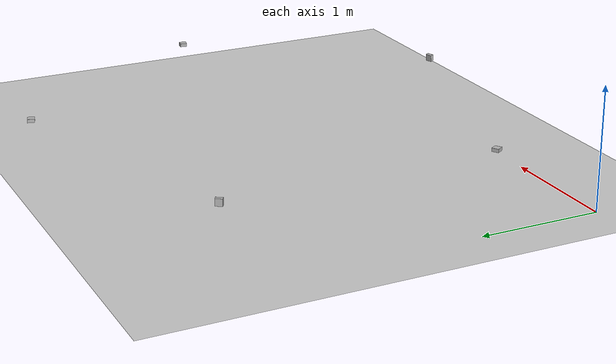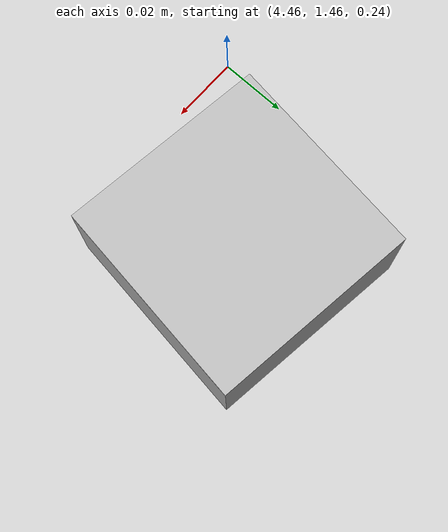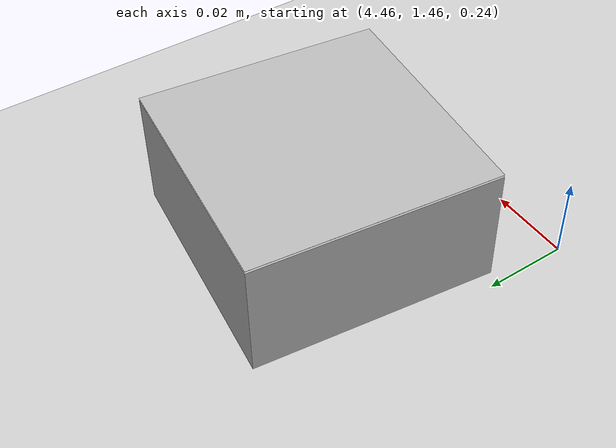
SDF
<sdf version='1.10'>
  <world name='empty'>
    <physics name='1ms' type='ignored'>
      <max_step_size>0.001</max_step_size>
      <real_time_factor>1</real_time_factor>
      <real_time_update_rate>1000</real_time_update_rate>
    </physics>

    <plugin name='gz::sim::systems::Physics' filename='gz-sim-physics-system'/>
    <plugin name='gz::sim::systems::UserCommands' filename='gz-sim-user-commands-system'/>
    <plugin name='gz::sim::systems::SceneBroadcaster' filename='gz-sim-scene-broadcaster-system'/>
    <plugin name='gz::sim::systems::Contact' filename='gz-sim-contact-system'/>

    <plugin name='gz::sim::systems::Sensors' filename='gz-sim-sensors-system'/>
    <plugin name='gz::sim::systems::Imu' filename='gz-sim-imu-system'/>
    <plugin filename="gz-sim-navsat-system" name="gz::sim::systems::NavSat"></plugin>

    <gravity>0 0 -9.8000000000000007</gravity>
    <magnetic_field>5.5644999999999998e-06 2.2875799999999999e-05 -4.2388400000000002e-05</magnetic_field>
    <atmosphere type='adiabatic'/>
    <scene>
      <ambient>0.400000006 0.400000006 0.400000006 1</ambient>
      <background>0.699999988 0.699999988 0.699999988 1</background>
      <shadows>true</shadows>
    </scene>
    <model name='ground_plane'>
      <static>true</static>
      <link name='link'>
        <collision name='collision'>
          <geometry>
            <plane>
              <normal>0 0 1</normal>
              <size>100 100</size>
            </plane>
          </geometry>
          <surface>
            <friction>
              <ode/>
            </friction>
            <bounce/>
            <contact/>
          </surface>
        </collision>
        <visual name='visual'>
          <geometry>
            <plane>
              <normal>0 0 1</normal>
              <size>100 100</size>
            </plane>
          </geometry>
          <material>
            <ambient>0.800000012 0.800000012 0.800000012 1</ambient>
            <diffuse>0.800000012 0.800000012 0.800000012 1</diffuse>
            <specular>0.800000012 0.800000012 0.800000012 1</specular>
          </material>
        </visual>
        <pose>0 0 0 0 0 0</pose>
        <inertial>
          <pose>0 0 0 0 0 0</pose>
          <mass>1</mass>
          <inertia>
            <ixx>1</ixx>
            <ixy>0</ixy>
            <ixz>0</ixz>
            <iyy>1</iyy>
            <iyz>0</iyz>
            <izz>1</izz>
          </inertia>
        </inertial>
        <enable_wind>false</enable_wind>
      </link>
      <pose>0 0 0 0 0 0</pose>
      <self_collide>false</self_collide>
    </model>

    <include>
      <uri>file:///home/ubuntu/gazebo_models/aruco_box</uri>
      <name>aruco_box_1</name>
      <pose>4.5 1.5 0.25 0 0 -1.696280217026461</pose>
    </include>
    <include>
      <uri>file:///home/ubuntu/gazebo_models/aruco_box</uri>
      <name>aruco_box_2</name>
      <pose>3.1200000000000001 3.3999999999999999 0.25 0 0 -1.8800000000000008</pose>
    </include>
    <include>
      <uri>file:///home/ubuntu/gazebo_models/aruco_box</uri>
      <name>aruco_box_3</name>
      <pose>0.87999999523162864 2.6800000667572021 0.24999999999999997 -3.1415551387824716 1.5645702263002295 2.5216248482743424</pose>
    </include>
    <include>
      <uri>file:///home/ubuntu/gazebo_models/aruco_box</uri>
      <name>aruco_box_4</name>
      <pose>0.87999999523162842 0.31999999284744263 0.25 0 0 -1.0120312326779595</pose>
    </include>
    <include>
      <uri>file:///home/ubuntu/gazebo_models/aruco_box</uri>
      <name>aruco_box_5</name>
      <pose>3.1199998855590816 -0.40000000596046459 0.24999999999999978 9.4332079693355041e-08 -1.478659009684971 1.8799999285045321</pose>
    </include>
    <light name='sun' type='directional'>
      <pose>0 0 10 0 0 0</pose>
      <cast_shadows>true</cast_shadows>
      <intensity>1</intensity>
      <direction>-0.5 0.10000000000000001 -0.90000000000000002</direction>
      <diffuse>0.800000012 0.800000012 0.800000012 1</diffuse>
      <specular>0.200000003 0.200000003 0.200000003 1</specular>
      <attenuation>
        <range>10</range>
        <linear>1</linear>
        <constant>1</constant>
        <quadratic>0</quadratic>
      </attenuation>
      <spot>
        <inner_angle>0</inner_angle>
        <outer_angle>0</outer_angle>
        <falloff>0</falloff>
      </spot>
    </light>
  </world>
</sdf>

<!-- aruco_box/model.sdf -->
<sdf version="1.6">
  <model name="aruco_box">
    <static>false</static>

    <link name="link">
      <inertial>
        <mass>0.05</mass>
        <inertia>
          <ixx>1e-5</ixx><iyy>1e-5</iyy><izz>1e-5</izz>
          <ixy>0</ixy><ixz>0</ixz><iyz>0</iyz>
        </inertia>
      </inertial>

      <collision name="box_col">
        <geometry>
          <box><size>0.06 0.06 0.03</size></box>
        </geometry>
      </collision>

      <visual name="box_vis">
        <geometry>
          <box><size>0.06 0.06 0.03</size></box>
        </geometry>
        <material>
          <ambient>0.7 0.7 0.7 1</ambient>
          <diffuse>0.7 0.7 0.7 1</diffuse>
        </material>
      </visual>

      <!-- Top marker plane -->
      <visual name="marker_plane">
        <!-- box half height = 0.015, lift slightly to avoid z-fighting -->
        <pose>0 0 0.0156 0 0 0</pose>
        <geometry>
          <plane>
            <normal>0 0 1</normal>
            <size>0.06 0.06</size>
          </plane>
        </geometry>
        <material>
          <script>
            <uri>model://aruco_box/materials/scripts</uri>
            <uri>model://aruco_box/materials/textures</uri>
            <name>ArucoBox/Marker</name>
          </script>
        </material>
      </visual>

    </link>
  </model>
</sdf>
